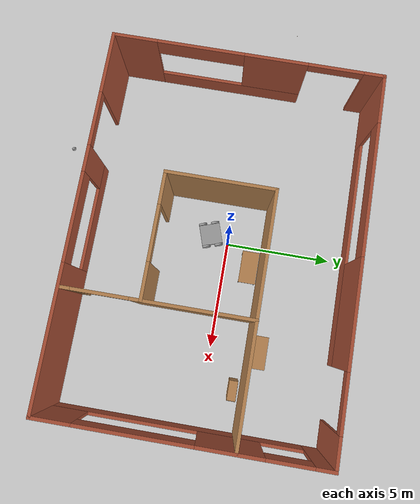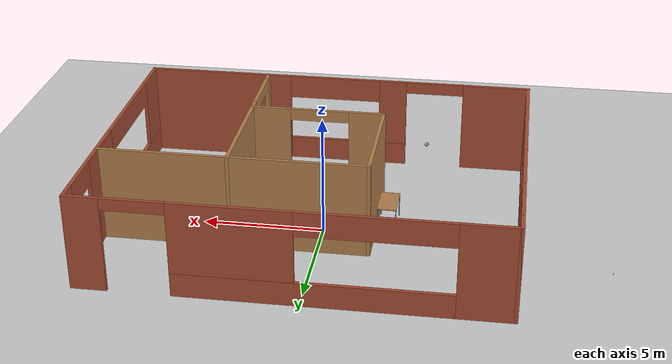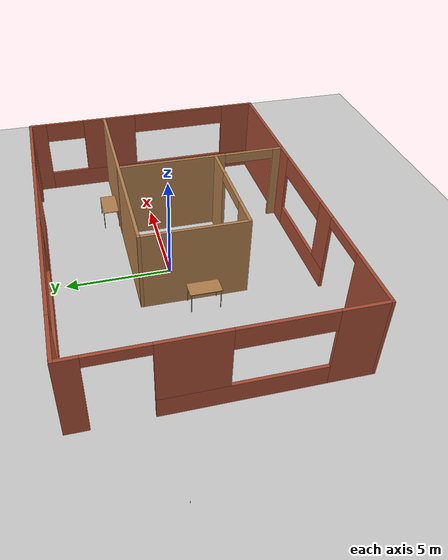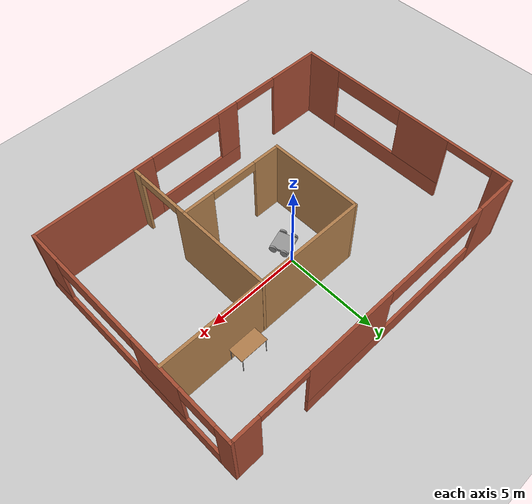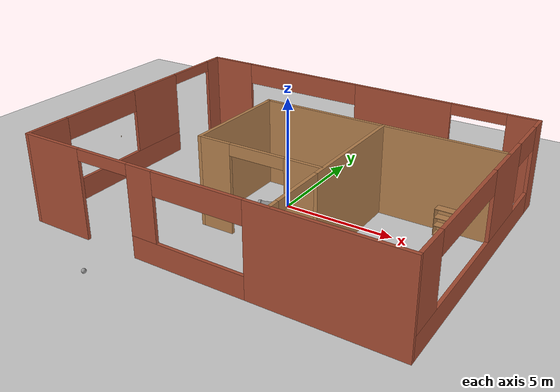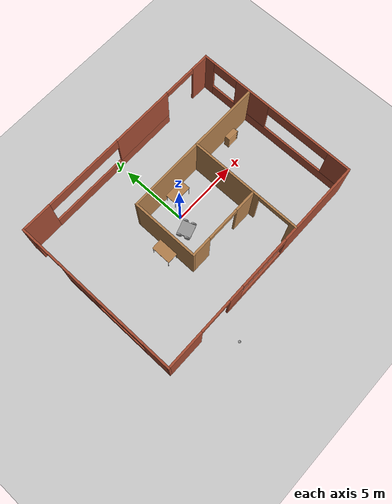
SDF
<sdf version="1.6">
 <world name="default">
  <model name="ground_plane">
   <static>1</static>
   <link name="link">
    <collision name="collision">
     <geometry><plane><normal>0 0 1</normal><size>100 100</size></plane></geometry>
     <surface>
      <contact><collide_bitmask>65535</collide_bitmask></contact>
      <friction><ode><mu>100</mu><mu2>50</mu2></ode></friction>
     </surface>
    </collision>
    <visual name="visual">
     <cast_shadows>0</cast_shadows>
     <geometry><plane><normal>0 0 1</normal><size>100 100</size></plane></geometry>
     <material>
      <script><uri>file://media/materials/scripts/gazebo.material</uri><name>Gazebo/Grey</name></script>
     </material>
    </visual>
   </link>
  </model>
  <model name="robot">
   <link name="link_0">
    <inertial>
     <mass>1</mass>
     <inertia>
      <ixx>0.166667</ixx>
      <ixy>0</ixy>
      <ixz>0</ixz>
      <iyy>0.166667</iyy>
      <iyz>0</iyz>
      <izz>0.166667</izz>
     </inertia>
    </inertial>
    <visual name="visual">
     <geometry><box><size>1 1 0.15</size></box></geometry>
     <material>
      <lighting>1</lighting>
      <script><uri>file://media/materials/scripts/gazebo.material</uri><name>Gazebo/Grey</name></script>
      <shader type="pixel"><normal_map>__default__</normal_map></shader>
      <ambient>0.3 0.3 0.3 1</ambient>
      <diffuse>0.7 0.7 0.7 1</diffuse>
      <specular>0.01 0.01 0.01 1</specular>
      <emissive>0 0 0 1</emissive>
     </material>
    </visual>
    <collision name="collision">
     <geometry><box><size>1 1 0.15</size></box></geometry>
     <surface>
      <friction>
       <ode><mu>1</mu><mu2>1</mu2><fdir1>0 0 0</fdir1><slip1>0</slip1><slip2>0</slip2></ode>
       <torsional>
        <coefficient>1</coefficient>
        <patch_radius>0</patch_radius>
        <surface_radius>0</surface_radius>
        <use_patch_radius>1</use_patch_radius>
        <ode><slip>0</slip></ode>
       </torsional>
      </friction>
      <bounce><restitution_coefficient>0</restitution_coefficient><threshold>1e+06</threshold></bounce>
      <contact>
       <collide_without_contact>0</collide_without_contact>
       <collide_without_contact_bitmask>1</collide_without_contact_bitmask>
       <collide_bitmask>1</collide_bitmask>
       <ode>
        <soft_cfm>0</soft_cfm>
        <soft_erp>0.2</soft_erp>
        <kp>1e+13</kp>
        <kd>1</kd>
        <max_vel>0.01</max_vel>
        <min_depth>0</min_depth>
       </ode>
       <bullet>
        <split_impulse>1</split_impulse>
        <split_impulse_penetration_threshold>-0.01</split_impulse_penetration_threshold>
        <soft_cfm>0</soft_cfm>
        <soft_erp>0.2</soft_erp>
        <kp>1e+13</kp>
        <kd>1</kd>
       </bullet>
      </contact>
     </surface>
    </collision>
   </link>
   <link name="link_1">
    <pose>-0.3 -0.550019 0 1.5707 -0 0</pose>
    <inertial>
     <mass>1</mass>
     <inertia><ixx>0.145833</ixx><ixy>0</ixy><ixz>0</ixz><iyy>0.145833</iyy><iyz>0</iyz><izz>0.125</izz></inertia>
    </inertial>
    <visual name="visual">
     <geometry><cylinder><radius>0.2</radius><length>0.1</length></cylinder></geometry>
     <material>
      <lighting>1</lighting>
      <script><uri>file://media/materials/scripts/gazebo.material</uri><name>Gazebo/Grey</name></script>
      <shader type="pixel"><normal_map>__default__</normal_map></shader>
      <ambient>0.3 0.3 0.3 1</ambient>
      <diffuse>0.7 0.7 0.7 1</diffuse>
      <specular>0.01 0.01 0.01 1</specular>
      <emissive>0 0 0 1</emissive>
     </material>
    </visual>
    <collision name="collision">
     <geometry><cylinder><radius>0.2</radius><length>0.1</length></cylinder></geometry>
     <surface>
      <friction>
       <ode><mu>1</mu><mu2>1</mu2><fdir1>0 0 0</fdir1><slip1>0</slip1><slip2>0</slip2></ode>
       <torsional>
        <coefficient>1</coefficient>
        <patch_radius>0</patch_radius>
        <surface_radius>0</surface_radius>
        <use_patch_radius>1</use_patch_radius>
        <ode><slip>0</slip></ode>
       </torsional>
      </friction>
      <bounce><restitution_coefficient>0</restitution_coefficient><threshold>1e+06</threshold></bounce>
      <contact>
       <collide_without_contact>0</collide_without_contact>
       <collide_without_contact_bitmask>1</collide_without_contact_bitmask>
       <collide_bitmask>1</collide_bitmask>
       <ode>
        <soft_cfm>0</soft_cfm>
        <soft_erp>0.2</soft_erp>
        <kp>1e+13</kp>
        <kd>1</kd>
        <max_vel>0.01</max_vel>
        <min_depth>0</min_depth>
       </ode>
       <bullet>
        <split_impulse>1</split_impulse>
        <split_impulse_penetration_threshold>-0.01</split_impulse_penetration_threshold>
        <soft_cfm>0</soft_cfm>
        <soft_erp>0.2</soft_erp>
        <kp>1e+13</kp>
        <kd>1</kd>
       </bullet>
      </contact>
     </surface>
    </collision>
   </link>
   <link name="link_1_clone">
    <pose>-0.3 0.550019 0 1.5707 -0 0</pose>
    <inertial>
     <mass>1</mass>
     <inertia><ixx>0.145833</ixx><ixy>0</ixy><ixz>0</ixz><iyy>0.145833</iyy><iyz>0</iyz><izz>0.125</izz></inertia>
    </inertial>
    <visual name="visual">
     <geometry><cylinder><radius>0.2</radius><length>0.1</length></cylinder></geometry>
     <material>
      <lighting>1</lighting>
      <script><uri>file://media/materials/scripts/gazebo.material</uri><name>Gazebo/Grey</name></script>
      <shader type="pixel"><normal_map>__default__</normal_map></shader>
      <ambient>0.3 0.3 0.3 1</ambient>
      <diffuse>0.7 0.7 0.7 1</diffuse>
      <specular>0.01 0.01 0.01 1</specular>
      <emissive>0 0 0 1</emissive>
     </material>
    </visual>
    <collision name="collision">
     <geometry><cylinder><radius>0.2</radius><length>0.1</length></cylinder></geometry>
     <surface>
      <friction>
       <ode><mu>1</mu><mu2>1</mu2><fdir1>0 0 0</fdir1><slip1>0</slip1><slip2>0</slip2></ode>
       <torsional>
        <coefficient>1</coefficient>
        <patch_radius>0</patch_radius>
        <surface_radius>0</surface_radius>
        <use_patch_radius>1</use_patch_radius>
        <ode><slip>0</slip></ode>
       </torsional>
      </friction>
      <bounce><restitution_coefficient>0</restitution_coefficient><threshold>1e+06</threshold></bounce>
      <contact>
       <collide_without_contact>0</collide_without_contact>
       <collide_without_contact_bitmask>1</collide_without_contact_bitmask>
       <collide_bitmask>1</collide_bitmask>
       <ode>
        <soft_cfm>0</soft_cfm>
        <soft_erp>0.2</soft_erp>
        <kp>1e+13</kp>
        <kd>1</kd>
        <max_vel>0.01</max_vel>
        <min_depth>0</min_depth>
       </ode>
       <bullet>
        <split_impulse>1</split_impulse>
        <split_impulse_penetration_threshold>-0.01</split_impulse_penetration_threshold>
        <soft_cfm>0</soft_cfm>
        <soft_erp>0.2</soft_erp>
        <kp>1e+13</kp>
        <kd>1</kd>
       </bullet>
      </contact>
     </surface>
    </collision>
   </link>
   <link name="link_1_clone_0">
    <pose>0.3 0.550019 0 1.5707 -0 0</pose>
    <inertial>
     <mass>1</mass>
     <inertia><ixx>0.145833</ixx><ixy>0</ixy><ixz>0</ixz><iyy>0.145833</iyy><iyz>0</iyz><izz>0.125</izz></inertia>
    </inertial>
    <visual name="visual">
     <geometry><cylinder><radius>0.2</radius><length>0.1</length></cylinder></geometry>
     <material>
      <lighting>1</lighting>
      <script><uri>file://media/materials/scripts/gazebo.material</uri><name>Gazebo/Grey</name></script>
      <shader type="pixel"><normal_map>__default__</normal_map></shader>
      <ambient>0.3 0.3 0.3 1</ambient>
      <diffuse>0.7 0.7 0.7 1</diffuse>
      <specular>0.01 0.01 0.01 1</specular>
      <emissive>0 0 0 1</emissive>
     </material>
    </visual>
    <collision name="collision">
     <geometry><cylinder><radius>0.2</radius><length>0.1</length></cylinder></geometry>
     <surface>
      <friction>
       <ode><mu>1</mu><mu2>1</mu2><fdir1>0 0 0</fdir1><slip1>0</slip1><slip2>0</slip2></ode>
       <torsional>
        <coefficient>1</coefficient>
        <patch_radius>0</patch_radius>
        <surface_radius>0</surface_radius>
        <use_patch_radius>1</use_patch_radius>
        <ode><slip>0</slip></ode>
       </torsional>
      </friction>
      <bounce><restitution_coefficient>0</restitution_coefficient><threshold>1e+06</threshold></bounce>
      <contact>
       <collide_without_contact>0</collide_without_contact>
       <collide_without_contact_bitmask>1</collide_without_contact_bitmask>
       <collide_bitmask>1</collide_bitmask>
       <ode>
        <soft_cfm>0</soft_cfm>
        <soft_erp>0.2</soft_erp>
        <kp>1e+13</kp>
        <kd>1</kd>
        <max_vel>0.01</max_vel>
        <min_depth>0</min_depth>
       </ode>
       <bullet>
        <split_impulse>1</split_impulse>
        <split_impulse_penetration_threshold>-0.01</split_impulse_penetration_threshold>
        <soft_cfm>0</soft_cfm>
        <soft_erp>0.2</soft_erp>
        <kp>1e+13</kp>
        <kd>1</kd>
       </bullet>
      </contact>
     </surface>
    </collision>
   </link>
   <link name="link_1_clone_1">
    <pose>0.3 -0.550019 0 1.5707 -0 0</pose>
    <inertial>
     <mass>1</mass>
     <inertia><ixx>0.145833</ixx><ixy>0</ixy><ixz>0</ixz><iyy>0.145833</iyy><iyz>0</iyz><izz>0.125</izz></inertia>
    </inertial>
    <visual name="visual">
     <geometry><cylinder><radius>0.2</radius><length>0.1</length></cylinder></geometry>
     <material>
      <lighting>1</lighting>
      <script><uri>file://media/materials/scripts/gazebo.material</uri><name>Gazebo/Grey</name></script>
      <shader type="pixel"><normal_map>__default__</normal_map></shader>
      <ambient>0.3 0.3 0.3 1</ambient>
      <diffuse>0.7 0.7 0.7 1</diffuse>
      <specular>0.01 0.01 0.01 1</specular>
      <emissive>0 0 0 1</emissive>
     </material>
    </visual>
    <collision name="collision">
     <geometry><cylinder><radius>0.2</radius><length>0.1</length></cylinder></geometry>
     <surface>
      <friction>
       <ode><mu>1</mu><mu2>1</mu2><fdir1>0 0 0</fdir1><slip1>0</slip1><slip2>0</slip2></ode>
       <torsional>
        <coefficient>1</coefficient>
        <patch_radius>0</patch_radius>
        <surface_radius>0</surface_radius>
        <use_patch_radius>1</use_patch_radius>
        <ode><slip>0</slip></ode>
       </torsional>
      </friction>
      <bounce><restitution_coefficient>0</restitution_coefficient><threshold>1e+06</threshold></bounce>
      <contact>
       <collide_without_contact>0</collide_without_contact>
       <collide_without_contact_bitmask>1</collide_without_contact_bitmask>
       <collide_bitmask>1</collide_bitmask>
       <ode>
        <soft_cfm>0</soft_cfm>
        <soft_erp>0.2</soft_erp>
        <kp>1e+13</kp>
        <kd>1</kd>
        <max_vel>0.01</max_vel>
        <min_depth>0</min_depth>
       </ode>
       <bullet>
        <split_impulse>1</split_impulse>
        <split_impulse_penetration_threshold>-0.01</split_impulse_penetration_threshold>
        <soft_cfm>0</soft_cfm>
        <soft_erp>0.2</soft_erp>
        <kp>1e+13</kp>
        <kd>1</kd>
       </bullet>
      </contact>
     </surface>
    </collision>
   </link>
   <joint name="link_0_JOINT_1" type="revolute">
    <parent>link_0</parent>
    <child>link_1_clone</child>
    <axis>
     <xyz>0 0 1</xyz>
     <use_parent_model_frame>0</use_parent_model_frame>
     <limit>
      <lower>-1.79769e+308</lower>
      <upper>1.79769e+308</upper>
      <effort>-1</effort>
      <velocity>-1</velocity>
     </limit>
     <dynamics>
      <spring_reference>0</spring_reference>
      <spring_stiffness>0</spring_stiffness>
      <damping>0</damping>
     </dynamics>
    </axis>
    <physics>
     <ode><limit><cfm>0</cfm><erp>0.2</erp></limit><suspension><cfm>0</cfm><erp>0.2</erp></suspension></ode>
    </physics>
   </joint>
   <joint name="link_0_JOINT_2" type="revolute">
    <parent>link_0</parent>
    <child>link_1_clone_0</child>
    <axis>
     <xyz>0 0 1</xyz>
     <use_parent_model_frame>0</use_parent_model_frame>
     <limit>
      <lower>-1.79769e+308</lower>
      <upper>1.79769e+308</upper>
      <effort>-1</effort>
      <velocity>-1</velocity>
     </limit>
     <dynamics>
      <spring_reference>0</spring_reference>
      <spring_stiffness>0</spring_stiffness>
      <damping>0</damping>
     </dynamics>
    </axis>
    <physics>
     <ode><limit><cfm>0</cfm><erp>0.2</erp></limit><suspension><cfm>0</cfm><erp>0.2</erp></suspension></ode>
    </physics>
   </joint>
   <joint name="link_0_JOINT_3" type="revolute">
    <parent>link_0</parent>
    <child>link_1</child>
    <axis>
     <xyz>0 0 1</xyz>
     <use_parent_model_frame>0</use_parent_model_frame>
     <limit>
      <lower>-1.79769e+308</lower>
      <upper>1.79769e+308</upper>
      <effort>-1</effort>
      <velocity>-1</velocity>
     </limit>
     <dynamics>
      <spring_reference>0</spring_reference>
      <spring_stiffness>0</spring_stiffness>
      <damping>0</damping>
     </dynamics>
    </axis>
    <physics>
     <ode><limit><cfm>0</cfm><erp>0.2</erp></limit><suspension><cfm>0</cfm><erp>0.2</erp></suspension></ode>
    </physics>
   </joint>
   <joint name="link_0_JOINT_4" type="revolute">
    <parent>link_0</parent>
    <child>link_1_clone_1</child>
    <axis>
     <xyz>1 0 0</xyz>
     <use_parent_model_frame>0</use_parent_model_frame>
     <limit>
      <lower>-1.79769e+308</lower>
      <upper>1.79769e+308</upper>
      <effort>-1</effort>
      <velocity>-1</velocity>
     </limit>
     <dynamics>
      <spring_reference>0</spring_reference>
      <spring_stiffness>0</spring_stiffness>
      <damping>0</damping>
     </dynamics>
    </axis>
    <physics>
     <ode><limit><cfm>0</cfm><erp>0.2</erp></limit><suspension><cfm>0</cfm><erp>0.2</erp></suspension></ode>
    </physics>
   </joint>
   <static>0</static>
   <pose>-0.334797 -0.893252 0.200003 3e-06 0 -1.24917</pose>
  </model>
  <model name="building">
   <pose>0.369 -0.474 0 0 -0 0</pose>
   <link name="Wall_20">
    <pose>0 -6.175 0 0 -0 3.14159</pose>
    <visual name="Wall_20_Visual_0">
     <pose>-5.30903 0 2 0 -0 0</pose>
     <geometry><box><size>6.38194 0.15 4</size></box></geometry>
     <material>
      <script><uri>file://media/materials/scripts/gazebo.material</uri><name>Gazebo/Bricks</name></script>
      <ambient>0.760784 0.662745 0.627451 1</ambient>
     </material>
     <meta><layer>0</layer></meta>
    </visual>
    <collision name="Wall_20_Collision_0">
     <geometry><box><size>6.38194 0.15 4</size></box></geometry>
     <pose>-5.30903 0 2 0 -0 0</pose>
    </collision>
    <visual name="Wall_20_Visual_1">
     <pose>7.04482 0 2 0 -0 0</pose>
     <geometry><box><size>2.91037 0.15 4</size></box></geometry>
     <material>
      <script><uri>file://media/materials/scripts/gazebo.material</uri><name>Gazebo/Bricks</name></script>
      <ambient>0.760784 0.662745 0.627451 1</ambient>
     </material>
     <meta><layer>0</layer></meta>
    </visual>
    <collision name="Wall_20_Collision_1">
     <geometry><box><size>2.91037 0.15 4</size></box></geometry>
     <pose>7.04482 0 2 0 -0 0</pose>
    </collision>
    <visual name="Wall_20_Visual_2">
     <pose>0.485784 0 0.5 0 -0 0</pose>
     <geometry><box><size>5.2077 0.15 1</size></box></geometry>
     <material>
      <script><uri>file://media/materials/scripts/gazebo.material</uri><name>Gazebo/Bricks</name></script>
      <ambient>0.760784 0.662745 0.627451 1</ambient>
     </material>
     <meta><layer>0</layer></meta>
    </visual>
    <collision name="Wall_20_Collision_2">
     <geometry><box><size>5.2077 0.15 1</size></box></geometry>
     <pose>0.485784 0 0.5 0 -0 0</pose>
    </collision>
    <visual name="Wall_20_Visual_3">
     <pose>2.48578 0 2.5 0 -0 0</pose>
     <geometry><box><size>1.20769 0.15 3</size></box></geometry>
     <material>
      <script><uri>file://media/materials/scripts/gazebo.material</uri><name>Gazebo/Bricks</name></script>
      <ambient>0.760784 0.662745 0.627451 1</ambient>
     </material>
     <meta><layer>0</layer></meta>
    </visual>
    <collision name="Wall_20_Collision_3">
     <geometry><box><size>1.20769 0.15 3</size></box></geometry>
     <pose>2.48578 0 2.5 0 -0 0</pose>
    </collision>
    <visual name="Wall_20_Visual_4">
     <pose>-0.118063 0 3.5 0 -0 0</pose>
     <geometry><box><size>4 0.15 1</size></box></geometry>
     <material>
      <script><uri>file://media/materials/scripts/gazebo.material</uri><name>Gazebo/Bricks</name></script>
      <ambient>0.760784 0.662745 0.627451 1</ambient>
     </material>
     <meta><layer>0</layer></meta>
    </visual>
    <collision name="Wall_20_Collision_4">
     <geometry><box><size>4 0.15 1</size></box></geometry>
     <pose>-0.118063 0 3.5 0 -0 0</pose>
    </collision>
    <visual name="Wall_20_Visual_5">
     <pose>4.33963 0 3.75 0 -0 0</pose>
     <geometry><box><size>2.5 0.15 0.5</size></box></geometry>
     <material>
      <script><uri>file://media/materials/scripts/gazebo.material</uri><name>Gazebo/Bricks</name></script>
      <ambient>0.760784 0.662745 0.627451 1</ambient>
     </material>
     <meta><layer>0</layer></meta>
    </visual>
    <collision name="Wall_20_Collision_5">
     <geometry><box><size>2.5 0.15 0.5</size></box></geometry>
     <pose>4.33963 0 3.75 0 -0 0</pose>
    </collision>
   </link>
   <link name="Wall_21">
    <pose>-8.425 0 0 0 -0 1.5708</pose>
    <visual name="Wall_21_Visual_0">
     <pose>-5.20282 0 2 0 -0 0</pose>
     <geometry><box><size>2.09437 0.15 4</size></box></geometry>
     <material>
      <script><uri>file://media/materials/scripts/gazebo.material</uri><name>Gazebo/Bricks</name></script>
      <ambient>0.760784 0.662745 0.627451 1</ambient>
     </material>
     <meta><layer>0</layer></meta>
    </visual>
    <collision name="Wall_21_Collision_0">
     <geometry><box><size>2.09437 0.15 4</size></box></geometry>
     <pose>-5.20282 0 2 0 -0 0</pose>
    </collision>
    <visual name="Wall_21_Visual_1">
     <pose>5.74619 0 2 0 -0 0</pose>
     <geometry><box><size>1.00762 0.15 4</size></box></geometry>
     <material>
      <script><uri>file://media/materials/scripts/gazebo.material</uri><name>Gazebo/Bricks</name></script>
      <ambient>0.760784 0.662745 0.627451 1</ambient>
     </material>
     <meta><layer>0</layer></meta>
    </visual>
    <collision name="Wall_21_Collision_1">
     <geometry><box><size>1.00762 0.15 4</size></box></geometry>
     <pose>5.74619 0 2 0 -0 0</pose>
    </collision>
    <visual name="Wall_21_Visual_2">
     <pose>-0.706627 0 0.5 0 -0 0</pose>
     <geometry><box><size>6.89801 0.15 1</size></box></geometry>
     <material>
      <script><uri>file://media/materials/scripts/gazebo.material</uri><name>Gazebo/Bricks</name></script>
      <ambient>0.760784 0.662745 0.627451 1</ambient>
     </material>
     <meta><layer>0</layer></meta>
    </visual>
    <collision name="Wall_21_Collision_2">
     <geometry><box><size>6.89801 0.15 1</size></box></geometry>
     <pose>-0.706627 0 0.5 0 -0 0</pose>
    </collision>
    <visual name="Wall_21_Visual_3">
     <pose>1.29337 0 2.5 0 -0 0</pose>
     <geometry><box><size>2.89801 0.15 3</size></box></geometry>
     <material>
      <script><uri>file://media/materials/scripts/gazebo.material</uri><name>Gazebo/Bricks</name></script>
      <ambient>0.760784 0.662745 0.627451 1</ambient>
     </material>
     <meta><layer>0</layer></meta>
    </visual>
    <collision name="Wall_21_Collision_3">
     <geometry><box><size>2.89801 0.15 3</size></box></geometry>
     <pose>1.29337 0 2.5 0 -0 0</pose>
    </collision>
    <visual name="Wall_21_Visual_4">
     <pose>-2.15563 0 3.5 0 -0 0</pose>
     <geometry><box><size>4 0.15 1</size></box></geometry>
     <material>
      <script><uri>file://media/materials/scripts/gazebo.material</uri><name>Gazebo/Bricks</name></script>
      <ambient>0.760784 0.662745 0.627451 1</ambient>
     </material>
     <meta><layer>0</layer></meta>
    </visual>
    <collision name="Wall_21_Collision_4">
     <geometry><box><size>4 0.15 1</size></box></geometry>
     <pose>-2.15563 0 3.5 0 -0 0</pose>
    </collision>
    <visual name="Wall_21_Visual_5">
     <pose>3.99238 0 3.75 0 -0 0</pose>
     <geometry><box><size>2.5 0.15 0.5</size></box></geometry>
     <material>
      <script><uri>file://media/materials/scripts/gazebo.material</uri><name>Gazebo/Bricks</name></script>
      <ambient>0.760784 0.662745 0.627451 1</ambient>
     </material>
     <meta><layer>0</layer></meta>
    </visual>
    <collision name="Wall_21_Collision_5">
     <geometry><box><size>2.5 0.15 0.5</size></box></geometry>
     <pose>3.99238 0 3.75 0 -0 0</pose>
    </collision>
   </link>
   <link name="Wall_22">
    <pose>0 6.175 0 0 -0 0</pose>
    <visual name="Wall_22_Visual_0">
     <pose>-7.35376 0 2 0 -0 0</pose>
     <geometry><box><size>2.29248 0.15 4</size></box></geometry>
     <material>
      <script><uri>file://media/materials/scripts/gazebo.material</uri><name>Gazebo/Bricks</name></script>
      <ambient>0.760784 0.662745 0.627451 1</ambient>
     </material>
     <meta><layer>0</layer></meta>
    </visual>
    <collision name="Wall_22_Collision_0">
     <geometry><box><size>2.29248 0.15 4</size></box></geometry>
     <pose>-7.35376 0 2 0 -0 0</pose>
    </collision>
    <visual name="Wall_22_Visual_1">
     <pose>7.77696 0 2 0 -0 0</pose>
     <geometry><box><size>1.44607 0.15 4</size></box></geometry>
     <material>
      <script><uri>file://media/materials/scripts/gazebo.material</uri><name>Gazebo/Bricks</name></script>
      <ambient>0.760784 0.662745 0.627451 1</ambient>
     </material>
     <meta><layer>0</layer></meta>
    </visual>
    <collision name="Wall_22_Collision_1">
     <geometry><box><size>1.44607 0.15 4</size></box></geometry>
     <pose>7.77696 0 2 0 -0 0</pose>
    </collision>
    <visual name="Wall_22_Visual_2">
     <pose>-0.826797 0 0.5 0 -0 0</pose>
     <geometry><box><size>10.7614 0.15 1</size></box></geometry>
     <material>
      <script><uri>file://media/materials/scripts/gazebo.material</uri><name>Gazebo/Bricks</name></script>
      <ambient>0.760784 0.662745 0.627451 1</ambient>
     </material>
     <meta><layer>0</layer></meta>
    </visual>
    <collision name="Wall_22_Collision_2">
     <geometry><box><size>10.7614 0.15 1</size></box></geometry>
     <pose>-0.826797 0 0.5 0 -0 0</pose>
    </collision>
    <visual name="Wall_22_Visual_3">
     <pose>2.1732 0 2.5 0 -0 0</pose>
     <geometry><box><size>4.76144 0.15 3</size></box></geometry>
     <material>
      <script><uri>file://media/materials/scripts/gazebo.material</uri><name>Gazebo/Bricks</name></script>
      <ambient>0.760784 0.662745 0.627451 1</ambient>
     </material>
     <meta><layer>0</layer></meta>
    </visual>
    <collision name="Wall_22_Collision_3">
     <geometry><box><size>4.76144 0.15 3</size></box></geometry>
     <pose>2.1732 0 2.5 0 -0 0</pose>
    </collision>
    <visual name="Wall_22_Visual_4">
     <pose>-3.20752 0 3.5 0 -0 0</pose>
     <geometry><box><size>6 0.15 1</size></box></geometry>
     <material>
      <script><uri>file://media/materials/scripts/gazebo.material</uri><name>Gazebo/Bricks</name></script>
      <ambient>0.760784 0.662745 0.627451 1</ambient>
     </material>
     <meta><layer>0</layer></meta>
    </visual>
    <collision name="Wall_22_Collision_4">
     <geometry><box><size>6 0.15 1</size></box></geometry>
     <pose>-3.20752 0 3.5 0 -0 0</pose>
    </collision>
    <visual name="Wall_22_Visual_5">
     <pose>5.80392 0 3.75 0 -0 0</pose>
     <geometry><box><size>2.5 0.15 0.5</size></box></geometry>
     <material>
      <script><uri>file://media/materials/scripts/gazebo.material</uri><name>Gazebo/Bricks</name></script>
      <ambient>0.760784 0.662745 0.627451 1</ambient>
     </material>
     <meta><layer>0</layer></meta>
    </visual>
    <collision name="Wall_22_Collision_5">
     <geometry><box><size>2.5 0.15 0.5</size></box></geometry>
     <pose>5.80392 0 3.75 0 -0 0</pose>
    </collision>
   </link>
   <link name="Wall_23">
    <pose>8.425 0 0 0 0 -1.5708</pose>
    <visual name="Wall_23_Visual_0">
     <pose>-5.80201 0 2 0 -0 0</pose>
     <geometry><box><size>0.895982 0.15 4</size></box></geometry>
     <material>
      <script><uri>file://media/materials/scripts/gazebo.material</uri><name>Gazebo/Bricks</name></script>
      <ambient>0.760784 0.662745 0.627451 1</ambient>
     </material>
     <meta><layer>0</layer></meta>
    </visual>
    <collision name="Wall_23_Collision_0">
     <geometry><box><size>0.895982 0.15 4</size></box></geometry>
     <pose>-5.80201 0 2 0 -0 0</pose>
    </collision>
    <visual name="Wall_23_Visual_1">
     <pose>0.447991 0 0.5 0 -0 0</pose>
     <geometry><box><size>11.604 0.15 1</size></box></geometry>
     <material>
      <script><uri>file://media/materials/scripts/gazebo.material</uri><name>Gazebo/Bricks</name></script>
      <ambient>0.760784 0.662745 0.627451 1</ambient>
     </material>
     <meta><layer>0</layer></meta>
    </visual>
    <collision name="Wall_23_Collision_1">
     <geometry><box><size>11.604 0.15 1</size></box></geometry>
     <pose>0.447991 0 0.5 0 -0 0</pose>
    </collision>
    <visual name="Wall_23_Visual_2">
     <pose>-1.93823 0 2.5 0 -0 0</pose>
     <geometry><box><size>2.83158 0.15 3</size></box></geometry>
     <material>
      <script><uri>file://media/materials/scripts/gazebo.material</uri><name>Gazebo/Bricks</name></script>
      <ambient>0.760784 0.662745 0.627451 1</ambient>
     </material>
     <meta><layer>0</layer></meta>
    </visual>
    <collision name="Wall_23_Collision_2">
     <geometry><box><size>2.83158 0.15 3</size></box></geometry>
     <pose>-1.93823 0 2.5 0 -0 0</pose>
    </collision>
    <visual name="Wall_23_Visual_3">
     <pose>5.36378 0 2.5 0 -0 0</pose>
     <geometry><box><size>1.77244 0.15 3</size></box></geometry>
     <material>
      <script><uri>file://media/materials/scripts/gazebo.material</uri><name>Gazebo/Bricks</name></script>
      <ambient>0.760784 0.662745 0.627451 1</ambient>
     </material>
     <meta><layer>0</layer></meta>
    </visual>
    <collision name="Wall_23_Collision_3">
     <geometry><box><size>1.77244 0.15 3</size></box></geometry>
     <pose>5.36378 0 2.5 0 -0 0</pose>
    </collision>
    <visual name="Wall_23_Visual_4">
     <pose>-4.35402 0 3.5 0 -0 0</pose>
     <geometry><box><size>2 0.15 1</size></box></geometry>
     <material>
      <script><uri>file://media/materials/scripts/gazebo.material</uri><name>Gazebo/Bricks</name></script>
      <ambient>0.760784 0.662745 0.627451 1</ambient>
     </material>
     <meta><layer>0</layer></meta>
    </visual>
    <collision name="Wall_23_Collision_4">
     <geometry><box><size>2 0.15 1</size></box></geometry>
     <pose>-4.35402 0 3.5 0 -0 0</pose>
    </collision>
    <visual name="Wall_23_Visual_5">
     <pose>1.97756 0 3.5 0 -0 0</pose>
     <geometry><box><size>5 0.15 1</size></box></geometry>
     <material>
      <script><uri>file://media/materials/scripts/gazebo.material</uri><name>Gazebo/Bricks</name></script>
      <ambient>0.760784 0.662745 0.627451 1</ambient>
     </material>
     <meta><layer>0</layer></meta>
    </visual>
    <collision name="Wall_23_Collision_5">
     <geometry><box><size>5 0.15 1</size></box></geometry>
     <pose>1.97756 0 3.5 0 -0 0</pose>
    </collision>
   </link>
   <link name="Wall_25">
    <collision name="Wall_25_Collision">
     <geometry><box><size>11 0.15 4</size></box></geometry>
     <pose>0 0 2 0 -0 0</pose>
    </collision>
    <visual name="Wall_25_Visual">
     <pose>0 0 2 0 -0 0</pose>
     <geometry><box><size>11 0.15 4</size></box></geometry>
     <material>
      <script><uri>file://media/materials/scripts/gazebo.material</uri><name>Gazebo/Wood</name></script>
      <ambient>0.921569 0.807843 0.615686 1</ambient>
     </material>
     <meta><layer>0</layer></meta>
    </visual>
    <pose>2.954 2.205 0 0 -0 3.14159</pose>
   </link>
   <link name="Wall_26">
    <collision name="Wall_26_Collision">
     <geometry><box><size>5.02707 0.15 4</size></box></geometry>
     <pose>0 0 2 0 -0 0</pose>
    </collision>
    <visual name="Wall_26_Visual">
     <pose>0 0 2 0 -0 0</pose>
     <geometry><box><size>5.02707 0.15 4</size></box></geometry>
     <material>
      <script><uri>file://media/materials/scripts/gazebo.material</uri><name>Gazebo/Wood</name></script>
      <ambient>0.921569 0.807843 0.615686 1</ambient>
     </material>
     <meta><layer>0</layer></meta>
    </visual>
    <pose>-2.471 -0.2335 0 0 0 -1.5708</pose>
   </link>
   <link name="Wall_27">
    <pose>0.329 -2.672 0 0 -0 0</pose>
    <visual name="Wall_27_Visual_0">
     <pose>-2.10196 0 2 0 -0 0</pose>
     <geometry><box><size>1.54607 0.15 4</size></box></geometry>
     <material>
      <script><uri>file://media/materials/scripts/gazebo.material</uri><name>Gazebo/Wood</name></script>
      <ambient>0.921569 0.807843 0.615686 1</ambient>
     </material>
     <meta><layer>0</layer></meta>
    </visual>
    <collision name="Wall_27_Collision_0">
     <geometry><box><size>1.54607 0.15 4</size></box></geometry>
     <pose>-2.10196 0 2 0 -0 0</pose>
    </collision>
    <visual name="Wall_27_Visual_1">
     <pose>2.02304 0 2 0 -0 0</pose>
     <geometry><box><size>1.70393 0.15 4</size></box></geometry>
     <material>
      <script><uri>file://media/materials/scripts/gazebo.material</uri><name>Gazebo/Wood</name></script>
      <ambient>0.921569 0.807843 0.615686 1</ambient>
     </material>
     <meta><layer>0</layer></meta>
    </visual>
    <collision name="Wall_27_Collision_1">
     <geometry><box><size>1.70393 0.15 4</size></box></geometry>
     <pose>2.02304 0 2 0 -0 0</pose>
    </collision>
    <visual name="Wall_27_Visual_2">
     <pose>-0.078929 0 3.75 0 -0 0</pose>
     <geometry><box><size>2.5 0.15 0.5</size></box></geometry>
     <material>
      <script><uri>file://media/materials/scripts/gazebo.material</uri><name>Gazebo/Wood</name></script>
      <ambient>0.921569 0.807843 0.615686 1</ambient>
     </material>
     <meta><layer>0</layer></meta>
    </visual>
    <collision name="Wall_27_Collision_2">
     <geometry><box><size>2.5 0.15 0.5</size></box></geometry>
     <pose>-0.078929 0 3.75 0 -0 0</pose>
    </collision>
   </link>
   <link name="Wall_29">
    <pose>3.143 -1.962 0 0 0 -1.5708</pose>
    <visual name="Wall_29_Visual_0">
     <pose>-1.52092 0 2 0 -0 0</pose>
     <geometry><box><size>5.45816 0.15 4</size></box></geometry>
     <material>
      <script><uri>file://media/materials/scripts/gazebo.material</uri><name>Gazebo/Wood</name></script>
      <ambient>0.921569 0.807843 0.615686 1</ambient>
     </material>
     <meta><layer>0</layer></meta>
    </visual>
    <collision name="Wall_29_Collision_0">
     <geometry><box><size>5.45816 0.15 4</size></box></geometry>
     <pose>-1.52092 0 2 0 -0 0</pose>
    </collision>
    <visual name="Wall_29_Visual_1">
     <pose>3.97908 0 2 0 -0 0</pose>
     <geometry><box><size>0.541837 0.15 4</size></box></geometry>
     <material>
      <script><uri>file://media/materials/scripts/gazebo.material</uri><name>Gazebo/Wood</name></script>
      <ambient>0.921569 0.807843 0.615686 1</ambient>
     </material>
     <meta><layer>0</layer></meta>
    </visual>
    <collision name="Wall_29_Collision_1">
     <geometry><box><size>0.541837 0.15 4</size></box></geometry>
     <pose>3.97908 0 2 0 -0 0</pose>
    </collision>
    <visual name="Wall_29_Visual_2">
     <pose>2.45816 0 3.75 0 -0 0</pose>
     <geometry><box><size>2.5 0.15 0.5</size></box></geometry>
     <material>
      <script><uri>file://media/materials/scripts/gazebo.material</uri><name>Gazebo/Wood</name></script>
      <ambient>0.921569 0.807843 0.615686 1</ambient>
     </material>
     <meta><layer>0</layer></meta>
    </visual>
    <collision name="Wall_29_Collision_2">
     <geometry><box><size>2.5 0.15 0.5</size></box></geometry>
     <pose>2.45816 0 3.75 0 -0 0</pose>
    </collision>
   </link>
   <static>1</static>
  </model>
  <model name="bookshelf">
   <static>1</static>
   <link name="link">
    <inertial><mass>1</mass></inertial>
    <collision name="back">
     <pose>0 0.005 0.6 0 -0 0</pose>
     <geometry><box><size>0.9 0.01 1.2</size></box></geometry>
    </collision>
    <visual name="visual1">
     <pose>0 0.005 0.6 0 -0 0</pose>
     <geometry><box><size>0.9 0.01 1.2</size></box></geometry>
     <material>
      <script><uri>file://media/materials/scripts/gazebo.material</uri><name>Gazebo/Wood</name></script>
     </material>
    </visual>
    <collision name="left_side">
     <pose>0.45 -0.195 0.6 0 -0 0</pose>
     <geometry><box><size>0.02 0.4 1.2</size></box></geometry>
    </collision>
    <visual name="visual2">
     <pose>0.45 -0.195 0.6 0 -0 0</pose>
     <geometry><box><size>0.02 0.4 1.2</size></box></geometry>
     <material>
      <script><uri>file://media/materials/scripts/gazebo.material</uri><name>Gazebo/Wood</name></script>
     </material>
    </visual>
    <collision name="right_side">
     <pose>-0.45 -0.195 0.6 0 -0 0</pose>
     <geometry><box><size>0.02 0.4 1.2</size></box></geometry>
    </collision>
    <visual name="visual3">
     <pose>-0.45 -0.195 0.6 0 -0 0</pose>
     <geometry><box><size>0.02 0.4 1.2</size></box></geometry>
     <material>
      <script><uri>file://media/materials/scripts/gazebo.material</uri><name>Gazebo/Wood</name></script>
     </material>
    </visual>
    <collision name="bottom">
     <pose>0 -0.195 0.03 0 -0 0</pose>
     <geometry><box><size>0.88 0.4 0.06</size></box></geometry>
    </collision>
    <visual name="visual4">
     <pose>0 -0.195 0.03 0 -0 0</pose>
     <geometry><box><size>0.88 0.4 0.06</size></box></geometry>
     <material>
      <script><uri>file://media/materials/scripts/gazebo.material</uri><name>Gazebo/Wood</name></script>
     </material>
    </visual>
    <collision name="top">
     <pose>0 -0.195 1.19 0 -0 0</pose>
     <geometry><box><size>0.88 0.4 0.02</size></box></geometry>
    </collision>
    <visual name="visual5">
     <pose>0 -0.195 1.19 0 -0 0</pose>
     <geometry><box><size>0.88 0.4 0.02</size></box></geometry>
     <material>
      <script><uri>file://media/materials/scripts/gazebo.material</uri><name>Gazebo/Wood</name></script>
     </material>
    </visual>
    <collision name="low_shelf">
     <pose>0 -0.195 0.43 0 -0 0</pose>
     <geometry><box><size>0.88 0.4 0.02</size></box></geometry>
    </collision>
    <visual name="visual6">
     <pose>0 -0.195 0.43 0 -0 0</pose>
     <geometry><box><size>0.88 0.4 0.02</size></box></geometry>
     <material>
      <script><uri>file://media/materials/scripts/gazebo.material</uri><name>Gazebo/Wood</name></script>
     </material>
    </visual>
    <collision name="high_shelf">
     <pose>0 -0.195 0.8 0 -0 0</pose>
     <geometry><box><size>0.88 0.4 0.02</size></box></geometry>
    </collision>
    <visual name="visual7">
     <pose>0 -0.195 0.8 0 -0 0</pose>
     <geometry><box><size>0.88 0.4 0.02</size></box></geometry>
     <material>
      <script><uri>file://media/materials/scripts/gazebo.material</uri><name>Gazebo/Wood</name></script>
     </material>
    </visual>
   </link>
   <pose>6.71777 1.50782 0 0 -0 0</pose>
  </model>
  <model name="table">
   <static>1</static>
   <link name="link">
    <collision name="surface">
     <pose>0 0 1 0 -0 0</pose>
     <geometry><box><size>1.5 0.8 0.03</size></box></geometry>
     <surface><friction><ode><mu>0.6</mu><mu2>0.6</mu2></ode></friction></surface>
    </collision>
    <visual name="visual1">
     <pose>0 0 1 0 -0 0</pose>
     <geometry><box><size>1.5 0.8 0.03</size></box></geometry>
     <material>
      <script><uri>file://media/materials/scripts/gazebo.material</uri><name>Gazebo/Wood</name></script>
     </material>
    </visual>
    <collision name="front_left_leg">
     <pose>0.68 0.38 0.5 0 -0 0</pose>
     <geometry><cylinder><radius>0.02</radius><length>1</length></cylinder></geometry>
    </collision>
    <visual name="front_left_leg">
     <pose>0.68 0.38 0.5 0 -0 0</pose>
     <geometry><cylinder><radius>0.02</radius><length>1</length></cylinder></geometry>
     <material>
      <script><uri>file://media/materials/scripts/gazebo.material</uri><name>Gazebo/Grey</name></script>
     </material>
    </visual>
    <collision name="front_right_leg">
     <pose>0.68 -0.38 0.5 0 -0 0</pose>
     <geometry><cylinder><radius>0.02</radius><length>1</length></cylinder></geometry>
    </collision>
    <visual name="front_right_leg">
     <pose>0.68 -0.38 0.5 0 -0 0</pose>
     <geometry><cylinder><radius>0.02</radius><length>1</length></cylinder></geometry>
     <material>
      <script><uri>file://media/materials/scripts/gazebo.material</uri><name>Gazebo/Grey</name></script>
     </material>
    </visual>
    <collision name="back_right_leg">
     <pose>-0.68 -0.38 0.5 0 -0 0</pose>
     <geometry><cylinder><radius>0.02</radius><length>1</length></cylinder></geometry>
    </collision>
    <visual name="back_right_leg">
     <pose>-0.68 -0.38 0.5 0 -0 0</pose>
     <geometry><cylinder><radius>0.02</radius><length>1</length></cylinder></geometry>
     <material>
      <script><uri>file://media/materials/scripts/gazebo.material</uri><name>Gazebo/Grey</name></script>
     </material>
    </visual>
    <collision name="back_left_leg">
     <pose>-0.68 0.38 0.5 0 -0 0</pose>
     <geometry><cylinder><radius>0.02</radius><length>1</length></cylinder></geometry>
    </collision>
    <visual name="back_left_leg">
     <pose>-0.68 0.38 0.5 0 -0 0</pose>
     <geometry><cylinder><radius>0.02</radius><length>1</length></cylinder></geometry>
     <material>
      <script><uri>file://media/materials/scripts/gazebo.material</uri><name>Gazebo/Grey</name></script>
     </material>
    </visual>
   </link>
   <pose>-2.59665 -1.03267 0 0 0 -1.57567</pose>
  </model>
  <model name="table_0">
   <static>1</static>
   <link name="link">
    <collision name="surface">
     <pose>0 0 1 0 -0 0</pose>
     <geometry><box><size>1.5 0.8 0.03</size></box></geometry>
     <surface><friction><ode><mu>0.6</mu><mu2>0.6</mu2></ode></friction></surface>
    </collision>
    <visual name="visual1">
     <pose>0 0 1 0 -0 0</pose>
     <geometry><box><size>1.5 0.8 0.03</size></box></geometry>
     <material>
      <script><uri>file://media/materials/scripts/gazebo.material</uri><name>Gazebo/Wood</name></script>
     </material>
    </visual>
    <collision name="front_left_leg">
     <pose>0.68 0.38 0.5 0 -0 0</pose>
     <geometry><cylinder><radius>0.02</radius><length>1</length></cylinder></geometry>
    </collision>
    <visual name="front_left_leg">
     <pose>0.68 0.38 0.5 0 -0 0</pose>
     <geometry><cylinder><radius>0.02</radius><length>1</length></cylinder></geometry>
     <material>
      <script><uri>file://media/materials/scripts/gazebo.material</uri><name>Gazebo/Grey</name></script>
     </material>
    </visual>
    <collision name="front_right_leg">
     <pose>0.68 -0.38 0.5 0 -0 0</pose>
     <geometry><cylinder><radius>0.02</radius><length>1</length></cylinder></geometry>
    </collision>
    <visual name="front_right_leg">
     <pose>0.68 -0.38 0.5 0 -0 0</pose>
     <geometry><cylinder><radius>0.02</radius><length>1</length></cylinder></geometry>
     <material>
      <script><uri>file://media/materials/scripts/gazebo.material</uri><name>Gazebo/Grey</name></script>
     </material>
    </visual>
    <collision name="back_right_leg">
     <pose>-0.68 -0.38 0.5 0 -0 0</pose>
     <geometry><cylinder><radius>0.02</radius><length>1</length></cylinder></geometry>
    </collision>
    <visual name="back_right_leg">
     <pose>-0.68 -0.38 0.5 0 -0 0</pose>
     <geometry><cylinder><radius>0.02</radius><length>1</length></cylinder></geometry>
     <material>
      <script><uri>file://media/materials/scripts/gazebo.material</uri><name>Gazebo/Grey</name></script>
     </material>
    </visual>
    <collision name="back_left_leg">
     <pose>-0.68 0.38 0.5 0 -0 0</pose>
     <geometry><cylinder><radius>0.02</radius><length>1</length></cylinder></geometry>
    </collision>
    <visual name="back_left_leg">
     <pose>-0.68 0.38 0.5 0 -0 0</pose>
     <geometry><cylinder><radius>0.02</radius><length>1</length></cylinder></geometry>
     <material>
      <script><uri>file://media/materials/scripts/gazebo.material</uri><name>Gazebo/Grey</name></script>
     </material>
    </visual>
   </link>
   <pose>1.05903 1.1794 0 0 -0 0</pose>
  </model>
  <model name="table_1">
   <static>1</static>
   <link name="link">
    <collision name="surface">
     <pose>0 0 1 0 -0 0</pose>
     <geometry><box><size>1.5 0.8 0.03</size></box></geometry>
     <surface><friction><ode><mu>0.6</mu><mu2>0.6</mu2></ode></friction></surface>
    </collision>
    <visual name="visual1">
     <pose>0 0 1 0 -0 0</pose>
     <geometry><box><size>1.5 0.8 0.03</size></box></geometry>
     <material>
      <script><uri>file://media/materials/scripts/gazebo.material</uri><name>Gazebo/Wood</name></script>
     </material>
    </visual>
    <collision name="front_left_leg">
     <pose>0.68 0.38 0.5 0 -0 0</pose>
     <geometry><cylinder><radius>0.02</radius><length>1</length></cylinder></geometry>
    </collision>
    <visual name="front_left_leg">
     <pose>0.68 0.38 0.5 0 -0 0</pose>
     <geometry><cylinder><radius>0.02</radius><length>1</length></cylinder></geometry>
     <material>
      <script><uri>file://media/materials/scripts/gazebo.material</uri><name>Gazebo/Grey</name></script>
     </material>
    </visual>
    <collision name="front_right_leg">
     <pose>0.68 -0.38 0.5 0 -0 0</pose>
     <geometry><cylinder><radius>0.02</radius><length>1</length></cylinder></geometry>
    </collision>
    <visual name="front_right_leg">
     <pose>0.68 -0.38 0.5 0 -0 0</pose>
     <geometry><cylinder><radius>0.02</radius><length>1</length></cylinder></geometry>
     <material>
      <script><uri>file://media/materials/scripts/gazebo.material</uri><name>Gazebo/Grey</name></script>
     </material>
    </visual>
    <collision name="back_right_leg">
     <pose>-0.68 -0.38 0.5 0 -0 0</pose>
     <geometry><cylinder><radius>0.02</radius><length>1</length></cylinder></geometry>
    </collision>
    <visual name="back_right_leg">
     <pose>-0.68 -0.38 0.5 0 -0 0</pose>
     <geometry><cylinder><radius>0.02</radius><length>1</length></cylinder></geometry>
     <material>
      <script><uri>file://media/materials/scripts/gazebo.material</uri><name>Gazebo/Grey</name></script>
     </material>
    </visual>
    <collision name="back_left_leg">
     <pose>-0.68 0.38 0.5 0 -0 0</pose>
     <geometry><cylinder><radius>0.02</radius><length>1</length></cylinder></geometry>
    </collision>
    <visual name="back_left_leg">
     <pose>-0.68 0.38 0.5 0 -0 0</pose>
     <geometry><cylinder><radius>0.02</radius><length>1</length></cylinder></geometry>
     <material>
      <script><uri>file://media/materials/scripts/gazebo.material</uri><name>Gazebo/Grey</name></script>
     </material>
    </visual>
   </link>
   <pose>4.86679 2.21211 0 0 -0 0</pose>
  </model>
  <model name="wooden_peg">
   <link name="link">
    <pose>0 0 0.04 0 -0 0</pose>
    <inertial>
     <mass>0.0175</mass>
     <inertia>
      <ixx>9.74923e-06</ixx>
      <ixy>0</ixy>
      <ixz>0</ixz>
      <iyy>9.74923e-06</iyy>
      <iyz>0</iyz>
      <izz>8.31797e-07</izz>
     </inertia>
    </inertial>
    <collision name="collision">
     <geometry><cylinder><radius>0.00975</radius><length>0.08</length></cylinder></geometry>
     <surface>
      <contact>
       <poissons_ratio>0.347</poissons_ratio>
       <elastic_modulus>8.8e+09</elastic_modulus>
       <ode><kp>100000</kp><kd>100</kd><max_vel>100</max_vel><min_depth>0.001</min_depth></ode>
      </contact>
      <friction>
       <torsional>
        <coefficient>1</coefficient>
        <use_patch_radius>0</use_patch_radius>
        <surface_radius>0.01</surface_radius>
       </torsional>
      </friction>
     </surface>
    </collision>
    <visual name="visual">
     <geometry><cylinder><radius>0.00975</radius><length>0.08</length></cylinder></geometry>
     <material>
      <script><uri>file://media/materials/scripts/gazebo.material</uri><name>Gazebo/Wood</name></script>
     </material>
    </visual>
   </link>
   <pose>-11.7269 1.83561 -0.001 0 -0 0</pose>
  </model>
  <model name="my_ball">
   <link name="link_0">
    <inertial>
     <mass>1</mass>
     <inertia><ixx>0.1</ixx><ixy>0</ixy><ixz>0</ixz><iyy>0.1</iyy><iyz>0</iyz><izz>0.1</izz></inertia>
    </inertial>
    <visual name="visual">
     <geometry><sphere><radius>0.1</radius></sphere></geometry>
     <material>
      <lighting>1</lighting>
      <script><uri>file://media/materials/scripts/gazebo.material</uri><name>Gazebo/Grey</name></script>
      <shader type="pixel"><normal_map>__default__</normal_map></shader>
      <ambient>1 1 1 1</ambient>
      <diffuse>1 1 1 1</diffuse>
      <specular>1 1 1 1</specular>
      <emissive>1 1 1 1</emissive>
     </material>
    </visual>
    <collision name="collision">
     <geometry><sphere><radius>0.1</radius></sphere></geometry>
     <surface>
      <friction>
       <ode><mu>1</mu><mu2>1</mu2><fdir1>0 0 0</fdir1><slip1>0</slip1><slip2>0</slip2></ode>
       <torsional>
        <coefficient>1</coefficient>
        <patch_radius>0</patch_radius>
        <surface_radius>0</surface_radius>
        <use_patch_radius>1</use_patch_radius>
        <ode><slip>0</slip></ode>
       </torsional>
      </friction>
      <bounce><restitution_coefficient>0</restitution_coefficient><threshold>1e+06</threshold></bounce>
      <contact>
       <collide_without_contact>0</collide_without_contact>
       <collide_without_contact_bitmask>1</collide_without_contact_bitmask>
       <collide_bitmask>1</collide_bitmask>
       <ode>
        <soft_cfm>0</soft_cfm>
        <soft_erp>0.2</soft_erp>
        <kp>1e+13</kp>
        <kd>1</kd>
        <max_vel>0.01</max_vel>
        <min_depth>0</min_depth>
       </ode>
       <bullet>
        <split_impulse>1</split_impulse>
        <split_impulse_penetration_threshold>-0.01</split_impulse_penetration_threshold>
        <soft_cfm>0</soft_cfm>
        <soft_erp>0.2</soft_erp>
        <kp>1e+13</kp>
        <kd>1</kd>
       </bullet>
      </contact>
     </surface>
    </collision>
   </link>
   <static>0</static>
   <pose>-3.56521 -8.52525 0.1 0 -0 0</pose>
  </model>
 </world>
</sdf>
